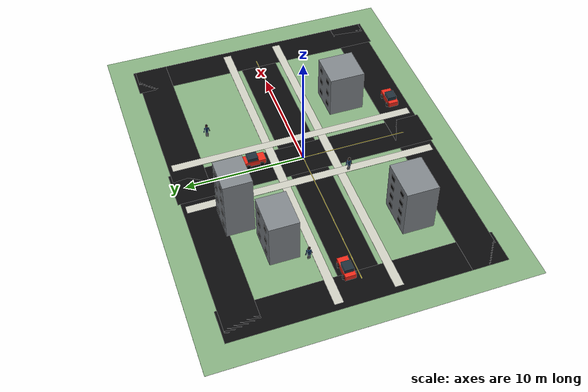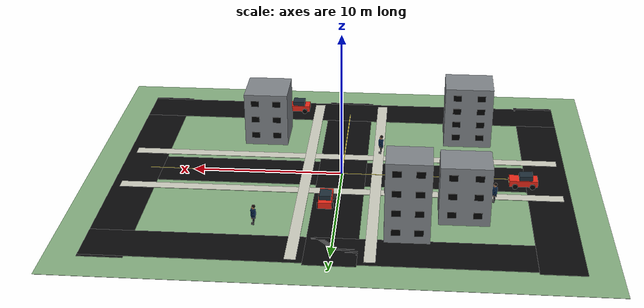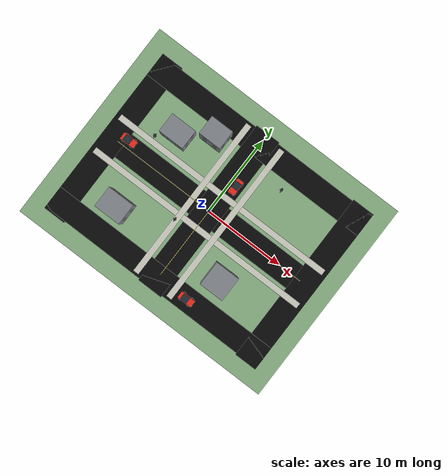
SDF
<sdf version="1.10">
 <world name="city_apm_rgbd">
  <physics name="apm_1ms_physics" type="ignored">
   <max_step_size>0.001</max_step_size>
   <real_time_factor>1.0</real_time_factor>
  </physics>
  <plugin filename="gz-sim-physics-system" name="gz::sim::systems::Physics"/>
  <plugin filename="gz-sim-air-pressure-system" name="gz::sim::systems::AirPressure"/>
  <plugin filename="gz-sim-sensors-system" name="gz::sim::systems::Sensors">
   <render_engine>ogre2</render_engine>
  </plugin>
  <plugin filename="gz-sim-user-commands-system" name="gz::sim::systems::UserCommands"/>
  <plugin filename="gz-sim-scene-broadcaster-system" name="gz::sim::systems::SceneBroadcaster"/>
  <plugin filename="gz-sim-imu-system" name="gz::sim::systems::Imu"/>
  <plugin filename="gz-sim-navsat-system" name="gz::sim::systems::NavSat"/>
  <scene>
   <ambient>0.98 0.98 0.96 1</ambient>
   <background>0.82 0.90 1.0 1</background>
   <shadows>false</shadows>
  </scene>
  <spherical_coordinates>
   <latitude_deg>-35.363262</latitude_deg>
   <longitude_deg>149.165237</longitude_deg>
   <elevation>584</elevation>
   <heading_deg>0</heading_deg>
   <surface_model>EARTH_WGS84</surface_model>
  </spherical_coordinates>
  <light name="sun" type="directional">
   <pose>0 0 24 0.45 0.25 0</pose>
   <diffuse>1.0 1.0 0.95 1</diffuse>
   <specular>0.55 0.55 0.50 1</specular>
   <direction>-0.25 0.18 -0.95</direction>
  </light>
  <model name="visual_ground">
   <static>true</static>
   <link name="link">
    <collision name="ground_collision">
     <pose>0 0 -0.01 0 0 0</pose>
     <geometry><box><size>34 26 0.02</size></box></geometry>
     <surface><friction><ode><mu>0.4</mu><mu2>0.4</mu2></ode></friction></surface>
    </collision>
    <visual name="ground_visual">
     <geometry><box><size>34 26 0.02</size></box></geometry>
     <pose>0 0 -0.01 0 0 0</pose>
     <material><diffuse>0.52 0.68 0.50 1</diffuse></material>
    </visual>
   </link>
  </model>
  <model name="visual_city_block">
   <static>true</static>
   <link name="link">
    <visual name="road_main">
     <pose>0 0 0.005 0 0 0</pose>
     <geometry><box><size>30 3.2 0.03</size></box></geometry>
     <material><diffuse>0.035 0.038 0.042 1</diffuse></material>
    </visual>
    <visual name="road_cross">
     <pose>0 0 0.006 0 0 0</pose>
     <geometry><box><size>3.2 22 0.035</size></box></geometry>
     <material><diffuse>0.035 0.038 0.042 1</diffuse></material>
    </visual>
    <visual name="road_outer_top">
     <pose>0 9.4 0.006 0 0 0</pose>
     <geometry><box><size>30 2.8 0.035</size></box></geometry>
     <material><diffuse>0.035 0.038 0.042 1</diffuse></material>
    </visual>
    <visual name="road_outer_bottom">
     <pose>0 -9.4 0.006 0 0 0</pose>
     <geometry><box><size>30 2.8 0.035</size></box></geometry>
     <material><diffuse>0.035 0.038 0.042 1</diffuse></material>
    </visual>
    <visual name="road_outer_left">
     <pose>-13.6 0 0.006 0 0 0</pose>
     <geometry><box><size>2.8 22 0.035</size></box></geometry>
     <material><diffuse>0.035 0.038 0.042 1</diffuse></material>
    </visual>
    <visual name="road_outer_right">
     <pose>13.6 0 0.006 0 0 0</pose>
     <geometry><box><size>2.8 22 0.035</size></box></geometry>
     <material><diffuse>0.035 0.038 0.042 1</diffuse></material>
    </visual>
    <visual name="lane_main">
     <pose>0 0 0.04 0 0 0</pose>
     <geometry><box><size>26 0.055 0.01</size></box></geometry>
     <material><diffuse>0.92 0.84 0.2 1</diffuse></material>
    </visual>
    <visual name="lane_cross">
     <pose>0 0 0.041 0 0 0</pose>
     <geometry><box><size>0.055 18 0.01</size></box></geometry>
     <material><diffuse>0.92 0.84 0.2 1</diffuse></material>
    </visual>
    <visual name="sidewalk_north">
     <pose>0 2.35 0.02 0 0 0</pose>
     <geometry><box><size>29 0.70 0.025</size></box></geometry>
     <material><diffuse>0.80 0.80 0.75 1</diffuse></material>
    </visual>
    <visual name="sidewalk_south">
     <pose>0 -2.35 0.02 0 0 0</pose>
     <geometry><box><size>29 0.70 0.025</size></box></geometry>
     <material><diffuse>0.80 0.80 0.75 1</diffuse></material>
    </visual>
    <visual name="sidewalk_east">
     <pose>2.35 0 0.021 0 0 0</pose>
     <geometry><box><size>0.70 21 0.025</size></box></geometry>
     <material><diffuse>0.80 0.80 0.75 1</diffuse></material>
    </visual>
    <visual name="sidewalk_west">
     <pose>-2.35 0 0.021 0 0 0</pose>
     <geometry><box><size>0.70 21 0.025</size></box></geometry>
     <material><diffuse>0.80 0.80 0.75 1</diffuse></material>
    </visual>
    <visual name="building_a">
     <pose>-8 4.8 2.0 0 0 0</pose>
     <geometry><box><size>3.2 2.4 4.0</size></box></geometry>
     <material>
      <ambient>0.62 0.64 0.66 1</ambient>
      <diffuse>0.50 0.52 0.54 1</diffuse>
      <specular>0.10 0.10 0.10 1</specular>
     </material>
    </visual>
    <visual name="building_b">
     <pose>-4.5 7.1 2.7 0 0 0</pose>
     <geometry><box><size>2.8 2.3 5.4</size></box></geometry>
     <material>
      <ambient>0.62 0.64 0.66 1</ambient>
      <diffuse>0.50 0.52 0.54 1</diffuse>
      <specular>0.10 0.10 0.10 1</specular>
     </material>
    </visual>
    <visual name="building_d">
     <pose>5.6 -5.4 1.9 0 0 0</pose>
     <geometry><box><size>3.0 3.0 3.8</size></box></geometry>
     <material>
      <ambient>0.62 0.64 0.66 1</ambient>
      <diffuse>0.50 0.52 0.54 1</diffuse>
      <specular>0.10 0.10 0.10 1</specular>
     </material>
    </visual>
    <visual name="building_e">
     <pose>-8.5 -5.8 2.2 0 0 0</pose>
     <geometry><box><size>3.3 2.6 4.4</size></box></geometry>
     <material>
      <ambient>0.62 0.64 0.66 1</ambient>
      <diffuse>0.50 0.52 0.54 1</diffuse>
      <specular>0.10 0.10 0.10 1</specular>
     </material>
    </visual>
    <visual name="window_building_a_front_0_0">
     <pose>-8.8 3.588 0.75 0 0 0</pose>
     <geometry><box><size>0.55 0.035 0.42</size></box></geometry>
     <material>
      <ambient>0.01 0.01 0.01 1</ambient>
      <diffuse>0.01 0.01 0.01 1</diffuse>
      <specular>0.05 0.05 0.05 1</specular>
     </material>
    </visual>
    <visual name="window_building_a_back_0_0">
     <pose>-8.8 6.012 0.75 0 0 0</pose>
     <geometry><box><size>0.55 0.035 0.42</size></box></geometry>
     <material>
      <ambient>0.01 0.01 0.01 1</ambient>
      <diffuse>0.01 0.01 0.01 1</diffuse>
      <specular>0.05 0.05 0.05 1</specular>
     </material>
    </visual>
    <visual name="window_building_a_front_0_1">
     <pose>-7.2 3.588 0.75 0 0 0</pose>
     <geometry><box><size>0.55 0.035 0.42</size></box></geometry>
     <material>
      <ambient>0.01 0.01 0.01 1</ambient>
      <diffuse>0.01 0.01 0.01 1</diffuse>
      <specular>0.05 0.05 0.05 1</specular>
     </material>
    </visual>
    <visual name="window_building_a_back_0_1">
     <pose>-7.2 6.012 0.75 0 0 0</pose>
     <geometry><box><size>0.55 0.035 0.42</size></box></geometry>
     <material>
      <ambient>0.01 0.01 0.01 1</ambient>
      <diffuse>0.01 0.01 0.01 1</diffuse>
      <specular>0.05 0.05 0.05 1</specular>
     </material>
    </visual>
    <visual name="window_building_a_front_1_0">
     <pose>-8.8 3.588 2.05 0 0 0</pose>
     <geometry><box><size>0.55 0.035 0.42</size></box></geometry>
     <material>
      <ambient>0.01 0.01 0.01 1</ambient>
      <diffuse>0.01 0.01 0.01 1</diffuse>
      <specular>0.05 0.05 0.05 1</specular>
     </material>
    </visual>
    <visual name="window_building_a_back_1_0">
     <pose>-8.8 6.012 2.05 0 0 0</pose>
     <geometry><box><size>0.55 0.035 0.42</size></box></geometry>
     <material>
      <ambient>0.01 0.01 0.01 1</ambient>
      <diffuse>0.01 0.01 0.01 1</diffuse>
      <specular>0.05 0.05 0.05 1</specular>
     </material>
    </visual>
    <visual name="window_building_a_front_1_1">
     <pose>-7.2 3.588 2.05 0 0 0</pose>
     <geometry><box><size>0.55 0.035 0.42</size></box></geometry>
     <material>
      <ambient>0.01 0.01 0.01 1</ambient>
      <diffuse>0.01 0.01 0.01 1</diffuse>
      <specular>0.05 0.05 0.05 1</specular>
     </material>
    </visual>
    <visual name="window_building_a_back_1_1">
     <pose>-7.2 6.012 2.05 0 0 0</pose>
     <geometry><box><size>0.55 0.035 0.42</size></box></geometry>
     <material>
      <ambient>0.01 0.01 0.01 1</ambient>
      <diffuse>0.01 0.01 0.01 1</diffuse>
      <specular>0.05 0.05 0.05 1</specular>
     </material>
    </visual>
    <visual name="window_building_a_front_2_0">
     <pose>-8.8 3.588 3.35 0 0 0</pose>
     <geometry><box><size>0.55 0.035 0.42</size></box></geometry>
     <material>
      <ambient>0.01 0.01 0.01 1</ambient>
      <diffuse>0.01 0.01 0.01 1</diffuse>
      <specular>0.05 0.05 0.05 1</specular>
     </material>
    </visual>
    <visual name="window_building_a_back_2_0">
     <pose>-8.8 6.012 3.35 0 0 0</pose>
     <geometry><box><size>0.55 0.035 0.42</size></box></geometry>
     <material>
      <ambient>0.01 0.01 0.01 1</ambient>
      <diffuse>0.01 0.01 0.01 1</diffuse>
      <specular>0.05 0.05 0.05 1</specular>
     </material>
    </visual>
    <visual name="window_building_a_front_2_1">
     <pose>-7.2 3.588 3.35 0 0 0</pose>
     <geometry><box><size>0.55 0.035 0.42</size></box></geometry>
     <material>
      <ambient>0.01 0.01 0.01 1</ambient>
      <diffuse>0.01 0.01 0.01 1</diffuse>
      <specular>0.05 0.05 0.05 1</specular>
     </material>
    </visual>
    <visual name="window_building_a_back_2_1">
     <pose>-7.2 6.012 3.35 0 0 0</pose>
     <geometry><box><size>0.55 0.035 0.42</size></box></geometry>
     <material>
      <ambient>0.01 0.01 0.01 1</ambient>
      <diffuse>0.01 0.01 0.01 1</diffuse>
      <specular>0.05 0.05 0.05 1</specular>
     </material>
    </visual>
    <visual name="window_building_a_side_0_0">
     <pose>-6.388 4.272 0.75 0 0 0</pose>
     <geometry><box><size>0.035 0.48 0.38</size></box></geometry>
     <material>
      <ambient>0.01 0.01 0.01 1</ambient>
      <diffuse>0.01 0.01 0.01 1</diffuse>
      <specular>0.05 0.05 0.05 1</specular>
     </material>
    </visual>
    <visual name="window_building_a_side_0_1">
     <pose>-6.388 5.328 0.75 0 0 0</pose>
     <geometry><box><size>0.035 0.48 0.38</size></box></geometry>
     <material>
      <ambient>0.01 0.01 0.01 1</ambient>
      <diffuse>0.01 0.01 0.01 1</diffuse>
      <specular>0.05 0.05 0.05 1</specular>
     </material>
    </visual>
    <visual name="window_building_a_side_1_0">
     <pose>-6.388 4.272 3.35 0 0 0</pose>
     <geometry><box><size>0.035 0.48 0.38</size></box></geometry>
     <material>
      <ambient>0.01 0.01 0.01 1</ambient>
      <diffuse>0.01 0.01 0.01 1</diffuse>
      <specular>0.05 0.05 0.05 1</specular>
     </material>
    </visual>
    <visual name="window_building_a_side_1_1">
     <pose>-6.388 5.328 3.35 0 0 0</pose>
     <geometry><box><size>0.035 0.48 0.38</size></box></geometry>
     <material>
      <ambient>0.01 0.01 0.01 1</ambient>
      <diffuse>0.01 0.01 0.01 1</diffuse>
      <specular>0.05 0.05 0.05 1</specular>
     </material>
    </visual>
    <visual name="window_building_b_front_0_0">
     <pose>-5.2 5.938 0.75 0 0 0</pose>
     <geometry><box><size>0.55 0.035 0.42</size></box></geometry>
     <material>
      <ambient>0.01 0.01 0.01 1</ambient>
      <diffuse>0.01 0.01 0.01 1</diffuse>
      <specular>0.05 0.05 0.05 1</specular>
     </material>
    </visual>
    <visual name="window_building_b_back_0_0">
     <pose>-5.2 8.262 0.75 0 0 0</pose>
     <geometry><box><size>0.55 0.035 0.42</size></box></geometry>
     <material>
      <ambient>0.01 0.01 0.01 1</ambient>
      <diffuse>0.01 0.01 0.01 1</diffuse>
      <specular>0.05 0.05 0.05 1</specular>
     </material>
    </visual>
    <visual name="window_building_b_front_0_1">
     <pose>-3.8 5.938 0.75 0 0 0</pose>
     <geometry><box><size>0.55 0.035 0.42</size></box></geometry>
     <material>
      <ambient>0.01 0.01 0.01 1</ambient>
      <diffuse>0.01 0.01 0.01 1</diffuse>
      <specular>0.05 0.05 0.05 1</specular>
     </material>
    </visual>
    <visual name="window_building_b_back_0_1">
     <pose>-3.8 8.262 0.75 0 0 0</pose>
     <geometry><box><size>0.55 0.035 0.42</size></box></geometry>
     <material>
      <ambient>0.01 0.01 0.01 1</ambient>
      <diffuse>0.01 0.01 0.01 1</diffuse>
      <specular>0.05 0.05 0.05 1</specular>
     </material>
    </visual>
    <visual name="window_building_b_front_1_0">
     <pose>-5.2 5.938 2.083 0 0 0</pose>
     <geometry><box><size>0.55 0.035 0.42</size></box></geometry>
     <material>
      <ambient>0.01 0.01 0.01 1</ambient>
      <diffuse>0.01 0.01 0.01 1</diffuse>
      <specular>0.05 0.05 0.05 1</specular>
     </material>
    </visual>
    <visual name="window_building_b_back_1_0">
     <pose>-5.2 8.262 2.083 0 0 0</pose>
     <geometry><box><size>0.55 0.035 0.42</size></box></geometry>
     <material>
      <ambient>0.01 0.01 0.01 1</ambient>
      <diffuse>0.01 0.01 0.01 1</diffuse>
      <specular>0.05 0.05 0.05 1</specular>
     </material>
    </visual>
    <visual name="window_building_b_front_1_1">
     <pose>-3.8 5.938 2.083 0 0 0</pose>
     <geometry><box><size>0.55 0.035 0.42</size></box></geometry>
     <material>
      <ambient>0.01 0.01 0.01 1</ambient>
      <diffuse>0.01 0.01 0.01 1</diffuse>
      <specular>0.05 0.05 0.05 1</specular>
     </material>
    </visual>
    <visual name="window_building_b_back_1_1">
     <pose>-3.8 8.262 2.083 0 0 0</pose>
     <geometry><box><size>0.55 0.035 0.42</size></box></geometry>
     <material>
      <ambient>0.01 0.01 0.01 1</ambient>
      <diffuse>0.01 0.01 0.01 1</diffuse>
      <specular>0.05 0.05 0.05 1</specular>
     </material>
    </visual>
    <visual name="window_building_b_front_2_0">
     <pose>-5.2 5.938 3.417 0 0 0</pose>
     <geometry><box><size>0.55 0.035 0.42</size></box></geometry>
     <material>
      <ambient>0.01 0.01 0.01 1</ambient>
      <diffuse>0.01 0.01 0.01 1</diffuse>
      <specular>0.05 0.05 0.05 1</specular>
     </material>
    </visual>
    <visual name="window_building_b_back_2_0">
     <pose>-5.2 8.262 3.417 0 0 0</pose>
     <geometry><box><size>0.55 0.035 0.42</size></box></geometry>
     <material>
      <ambient>0.01 0.01 0.01 1</ambient>
      <diffuse>0.01 0.01 0.01 1</diffuse>
      <specular>0.05 0.05 0.05 1</specular>
     </material>
    </visual>
    <visual name="window_building_b_front_2_1">
     <pose>-3.8 5.938 3.417 0 0 0</pose>
     <geometry><box><size>0.55 0.035 0.42</size></box></geometry>
     <material>
      <ambient>0.01 0.01 0.01 1</ambient>
      <diffuse>0.01 0.01 0.01 1</diffuse>
      <specular>0.05 0.05 0.05 1</specular>
     </material>
    </visual>
    <visual name="window_building_b_back_2_1">
     <pose>-3.8 8.262 3.417 0 0 0</pose>
     <geometry><box><size>0.55 0.035 0.42</size></box></geometry>
     <material>
      <ambient>0.01 0.01 0.01 1</ambient>
      <diffuse>0.01 0.01 0.01 1</diffuse>
      <specular>0.05 0.05 0.05 1</specular>
     </material>
    </visual>
    <visual name="window_building_b_front_3_0">
     <pose>-5.2 5.938 4.75 0 0 0</pose>
     <geometry><box><size>0.55 0.035 0.42</size></box></geometry>
     <material>
      <ambient>0.01 0.01 0.01 1</ambient>
      <diffuse>0.01 0.01 0.01 1</diffuse>
      <specular>0.05 0.05 0.05 1</specular>
     </material>
    </visual>
    <visual name="window_building_b_back_3_0">
     <pose>-5.2 8.262 4.75 0 0 0</pose>
     <geometry><box><size>0.55 0.035 0.42</size></box></geometry>
     <material>
      <ambient>0.01 0.01 0.01 1</ambient>
      <diffuse>0.01 0.01 0.01 1</diffuse>
      <specular>0.05 0.05 0.05 1</specular>
     </material>
    </visual>
    <visual name="window_building_b_front_3_1">
     <pose>-3.8 5.938 4.75 0 0 0</pose>
     <geometry><box><size>0.55 0.035 0.42</size></box></geometry>
     <material>
      <ambient>0.01 0.01 0.01 1</ambient>
      <diffuse>0.01 0.01 0.01 1</diffuse>
      <specular>0.05 0.05 0.05 1</specular>
     </material>
    </visual>
    <visual name="window_building_b_back_3_1">
     <pose>-3.8 8.262 4.75 0 0 0</pose>
     <geometry><box><size>0.55 0.035 0.42</size></box></geometry>
     <material>
      <ambient>0.01 0.01 0.01 1</ambient>
      <diffuse>0.01 0.01 0.01 1</diffuse>
      <specular>0.05 0.05 0.05 1</specular>
     </material>
    </visual>
    <visual name="window_building_b_side_0_0">
     <pose>-3.088 6.594 0.75 0 0 0</pose>
     <geometry><box><size>0.035 0.48 0.38</size></box></geometry>
     <material>
      <ambient>0.01 0.01 0.01 1</ambient>
      <diffuse>0.01 0.01 0.01 1</diffuse>
      <specular>0.05 0.05 0.05 1</specular>
     </material>
    </visual>
    <visual name="window_building_b_side_0_1">
     <pose>-3.088 7.606 0.75 0 0 0</pose>
     <geometry><box><size>0.035 0.48 0.38</size></box></geometry>
     <material>
      <ambient>0.01 0.01 0.01 1</ambient>
      <diffuse>0.01 0.01 0.01 1</diffuse>
      <specular>0.05 0.05 0.05 1</specular>
     </material>
    </visual>
    <visual name="window_building_b_side_1_0">
     <pose>-3.088 6.594 3.417 0 0 0</pose>
     <geometry><box><size>0.035 0.48 0.38</size></box></geometry>
     <material>
      <ambient>0.01 0.01 0.01 1</ambient>
      <diffuse>0.01 0.01 0.01 1</diffuse>
      <specular>0.05 0.05 0.05 1</specular>
     </material>
    </visual>
    <visual name="window_building_b_side_1_1">
     <pose>-3.088 7.606 3.417 0 0 0</pose>
     <geometry><box><size>0.035 0.48 0.38</size></box></geometry>
     <material>
      <ambient>0.01 0.01 0.01 1</ambient>
      <diffuse>0.01 0.01 0.01 1</diffuse>
      <specular>0.05 0.05 0.05 1</specular>
     </material>
    </visual>
    <visual name="window_building_d_front_0_0">
     <pose>4.85 -6.912 0.75 0 0 0</pose>
     <geometry><box><size>0.55 0.035 0.42</size></box></geometry>
     <material>
      <ambient>0.01 0.01 0.01 1</ambient>
      <diffuse>0.01 0.01 0.01 1</diffuse>
      <specular>0.05 0.05 0.05 1</specular>
     </material>
    </visual>
    <visual name="window_building_d_back_0_0">
     <pose>4.85 -3.888 0.75 0 0 0</pose>
     <geometry><box><size>0.55 0.035 0.42</size></box></geometry>
     <material>
      <ambient>0.01 0.01 0.01 1</ambient>
      <diffuse>0.01 0.01 0.01 1</diffuse>
      <specular>0.05 0.05 0.05 1</specular>
     </material>
    </visual>
    <visual name="window_building_d_front_0_1">
     <pose>6.35 -6.912 0.75 0 0 0</pose>
     <geometry><box><size>0.55 0.035 0.42</size></box></geometry>
     <material>
      <ambient>0.01 0.01 0.01 1</ambient>
      <diffuse>0.01 0.01 0.01 1</diffuse>
      <specular>0.05 0.05 0.05 1</specular>
     </material>
    </visual>
    <visual name="window_building_d_back_0_1">
     <pose>6.35 -3.888 0.75 0 0 0</pose>
     <geometry><box><size>0.55 0.035 0.42</size></box></geometry>
     <material>
      <ambient>0.01 0.01 0.01 1</ambient>
      <diffuse>0.01 0.01 0.01 1</diffuse>
      <specular>0.05 0.05 0.05 1</specular>
     </material>
    </visual>
    <visual name="window_building_d_front_1_0">
     <pose>4.85 -6.912 1.95 0 0 0</pose>
     <geometry><box><size>0.55 0.035 0.42</size></box></geometry>
     <material>
      <ambient>0.01 0.01 0.01 1</ambient>
      <diffuse>0.01 0.01 0.01 1</diffuse>
      <specular>0.05 0.05 0.05 1</specular>
     </material>
    </visual>
    <visual name="window_building_d_back_1_0">
     <pose>4.85 -3.888 1.95 0 0 0</pose>
     <geometry><box><size>0.55 0.035 0.42</size></box></geometry>
     <material>
      <ambient>0.01 0.01 0.01 1</ambient>
      <diffuse>0.01 0.01 0.01 1</diffuse>
      <specular>0.05 0.05 0.05 1</specular>
     </material>
    </visual>
    <visual name="window_building_d_front_1_1">
     <pose>6.35 -6.912 1.95 0 0 0</pose>
     <geometry><box><size>0.55 0.035 0.42</size></box></geometry>
     <material>
      <ambient>0.01 0.01 0.01 1</ambient>
      <diffuse>0.01 0.01 0.01 1</diffuse>
      <specular>0.05 0.05 0.05 1</specular>
     </material>
    </visual>
    <visual name="window_building_d_back_1_1">
     <pose>6.35 -3.888 1.95 0 0 0</pose>
     <geometry><box><size>0.55 0.035 0.42</size></box></geometry>
     <material>
      <ambient>0.01 0.01 0.01 1</ambient>
      <diffuse>0.01 0.01 0.01 1</diffuse>
      <specular>0.05 0.05 0.05 1</specular>
     </material>
    </visual>
    <visual name="window_building_d_front_2_0">
     <pose>4.85 -6.912 3.15 0 0 0</pose>
     <geometry><box><size>0.55 0.035 0.42</size></box></geometry>
     <material>
      <ambient>0.01 0.01 0.01 1</ambient>
      <diffuse>0.01 0.01 0.01 1</diffuse>
      <specular>0.05 0.05 0.05 1</specular>
     </material>
    </visual>
    <visual name="window_building_d_back_2_0">
     <pose>4.85 -3.888 3.15 0 0 0</pose>
     <geometry><box><size>0.55 0.035 0.42</size></box></geometry>
     <material>
      <ambient>0.01 0.01 0.01 1</ambient>
      <diffuse>0.01 0.01 0.01 1</diffuse>
      <specular>0.05 0.05 0.05 1</specular>
     </material>
    </visual>
    <visual name="window_building_d_front_2_1">
     <pose>6.35 -6.912 3.15 0 0 0</pose>
     <geometry><box><size>0.55 0.035 0.42</size></box></geometry>
     <material>
      <ambient>0.01 0.01 0.01 1</ambient>
      <diffuse>0.01 0.01 0.01 1</diffuse>
      <specular>0.05 0.05 0.05 1</specular>
     </material>
    </visual>
    <visual name="window_building_d_back_2_1">
     <pose>6.35 -3.888 3.15 0 0 0</pose>
     <geometry><box><size>0.55 0.035 0.42</size></box></geometry>
     <material>
      <ambient>0.01 0.01 0.01 1</ambient>
      <diffuse>0.01 0.01 0.01 1</diffuse>
      <specular>0.05 0.05 0.05 1</specular>
     </material>
    </visual>
    <visual name="window_building_d_side_0_0">
     <pose>7.112 -6.06 0.75 0 0 0</pose>
     <geometry><box><size>0.035 0.48 0.38</size></box></geometry>
     <material>
      <ambient>0.01 0.01 0.01 1</ambient>
      <diffuse>0.01 0.01 0.01 1</diffuse>
      <specular>0.05 0.05 0.05 1</specular>
     </material>
    </visual>
    <visual name="window_building_d_side_0_1">
     <pose>7.112 -4.74 0.75 0 0 0</pose>
     <geometry><box><size>0.035 0.48 0.38</size></box></geometry>
     <material>
      <ambient>0.01 0.01 0.01 1</ambient>
      <diffuse>0.01 0.01 0.01 1</diffuse>
      <specular>0.05 0.05 0.05 1</specular>
     </material>
    </visual>
    <visual name="window_building_d_side_1_0">
     <pose>7.112 -6.06 3.15 0 0 0</pose>
     <geometry><box><size>0.035 0.48 0.38</size></box></geometry>
     <material>
      <ambient>0.01 0.01 0.01 1</ambient>
      <diffuse>0.01 0.01 0.01 1</diffuse>
      <specular>0.05 0.05 0.05 1</specular>
     </material>
    </visual>
    <visual name="window_building_d_side_1_1">
     <pose>7.112 -4.74 3.15 0 0 0</pose>
     <geometry><box><size>0.035 0.48 0.38</size></box></geometry>
     <material>
      <ambient>0.01 0.01 0.01 1</ambient>
      <diffuse>0.01 0.01 0.01 1</diffuse>
      <specular>0.05 0.05 0.05 1</specular>
     </material>
    </visual>
    <visual name="window_building_e_front_0_0">
     <pose>-9.325 -7.112 0.75 0 0 0</pose>
     <geometry><box><size>0.55 0.035 0.42</size></box></geometry>
     <material>
      <ambient>0.01 0.01 0.01 1</ambient>
      <diffuse>0.01 0.01 0.01 1</diffuse>
      <specular>0.05 0.05 0.05 1</specular>
     </material>
    </visual>
    <visual name="window_building_e_back_0_0">
     <pose>-9.325 -4.488 0.75 0 0 0</pose>
     <geometry><box><size>0.55 0.035 0.42</size></box></geometry>
     <material>
      <ambient>0.01 0.01 0.01 1</ambient>
      <diffuse>0.01 0.01 0.01 1</diffuse>
      <specular>0.05 0.05 0.05 1</specular>
     </material>
    </visual>
    <visual name="window_building_e_front_0_1">
     <pose>-7.675 -7.112 0.75 0 0 0</pose>
     <geometry><box><size>0.55 0.035 0.42</size></box></geometry>
     <material>
      <ambient>0.01 0.01 0.01 1</ambient>
      <diffuse>0.01 0.01 0.01 1</diffuse>
      <specular>0.05 0.05 0.05 1</specular>
     </material>
    </visual>
    <visual name="window_building_e_back_0_1">
     <pose>-7.675 -4.488 0.75 0 0 0</pose>
     <geometry><box><size>0.55 0.035 0.42</size></box></geometry>
     <material>
      <ambient>0.01 0.01 0.01 1</ambient>
      <diffuse>0.01 0.01 0.01 1</diffuse>
      <specular>0.05 0.05 0.05 1</specular>
     </material>
    </visual>
    <visual name="window_building_e_front_1_0">
     <pose>-9.325 -7.112 1.75 0 0 0</pose>
     <geometry><box><size>0.55 0.035 0.42</size></box></geometry>
     <material>
      <ambient>0.01 0.01 0.01 1</ambient>
      <diffuse>0.01 0.01 0.01 1</diffuse>
      <specular>0.05 0.05 0.05 1</specular>
     </material>
    </visual>
    <visual name="window_building_e_back_1_0">
     <pose>-9.325 -4.488 1.75 0 0 0</pose>
     <geometry><box><size>0.55 0.035 0.42</size></box></geometry>
     <material>
      <ambient>0.01 0.01 0.01 1</ambient>
      <diffuse>0.01 0.01 0.01 1</diffuse>
      <specular>0.05 0.05 0.05 1</specular>
     </material>
    </visual>
    <visual name="window_building_e_front_1_1">
     <pose>-7.675 -7.112 1.75 0 0 0</pose>
     <geometry><box><size>0.55 0.035 0.42</size></box></geometry>
     <material>
      <ambient>0.01 0.01 0.01 1</ambient>
      <diffuse>0.01 0.01 0.01 1</diffuse>
      <specular>0.05 0.05 0.05 1</specular>
     </material>
    </visual>
    <visual name="window_building_e_back_1_1">
     <pose>-7.675 -4.488 1.75 0 0 0</pose>
     <geometry><box><size>0.55 0.035 0.42</size></box></geometry>
     <material>
      <ambient>0.01 0.01 0.01 1</ambient>
      <diffuse>0.01 0.01 0.01 1</diffuse>
      <specular>0.05 0.05 0.05 1</specular>
     </material>
    </visual>
    <visual name="window_building_e_front_2_0">
     <pose>-9.325 -7.112 2.75 0 0 0</pose>
     <geometry><box><size>0.55 0.035 0.42</size></box></geometry>
     <material>
      <ambient>0.01 0.01 0.01 1</ambient>
      <diffuse>0.01 0.01 0.01 1</diffuse>
      <specular>0.05 0.05 0.05 1</specular>
     </material>
    </visual>
    <visual name="window_building_e_back_2_0">
     <pose>-9.325 -4.488 2.75 0 0 0</pose>
     <geometry><box><size>0.55 0.035 0.42</size></box></geometry>
     <material>
      <ambient>0.01 0.01 0.01 1</ambient>
      <diffuse>0.01 0.01 0.01 1</diffuse>
      <specular>0.05 0.05 0.05 1</specular>
     </material>
    </visual>
    <visual name="window_building_e_front_2_1">
     <pose>-7.675 -7.112 2.75 0 0 0</pose>
     <geometry><box><size>0.55 0.035 0.42</size></box></geometry>
     <material>
      <ambient>0.01 0.01 0.01 1</ambient>
      <diffuse>0.01 0.01 0.01 1</diffuse>
      <specular>0.05 0.05 0.05 1</specular>
     </material>
    </visual>
    <visual name="window_building_e_back_2_1">
     <pose>-7.675 -4.488 2.75 0 0 0</pose>
     <geometry><box><size>0.55 0.035 0.42</size></box></geometry>
     <material>
      <ambient>0.01 0.01 0.01 1</ambient>
      <diffuse>0.01 0.01 0.01 1</diffuse>
      <specular>0.05 0.05 0.05 1</specular>
     </material>
    </visual>
    <visual name="window_building_e_front_3_0">
     <pose>-9.325 -7.112 3.75 0 0 0</pose>
     <geometry><box><size>0.55 0.035 0.42</size></box></geometry>
     <material>
      <ambient>0.01 0.01 0.01 1</ambient>
      <diffuse>0.01 0.01 0.01 1</diffuse>
      <specular>0.05 0.05 0.05 1</specular>
     </material>
    </visual>
    <visual name="window_building_e_back_3_0">
     <pose>-9.325 -4.488 3.75 0 0 0</pose>
     <geometry><box><size>0.55 0.035 0.42</size></box></geometry>
     <material>
      <ambient>0.01 0.01 0.01 1</ambient>
      <diffuse>0.01 0.01 0.01 1</diffuse>
      <specular>0.05 0.05 0.05 1</specular>
     </material>
    </visual>
    <visual name="window_building_e_front_3_1">
     <pose>-7.675 -7.112 3.75 0 0 0</pose>
     <geometry><box><size>0.55 0.035 0.42</size></box></geometry>
     <material>
      <ambient>0.01 0.01 0.01 1</ambient>
      <diffuse>0.01 0.01 0.01 1</diffuse>
      <specular>0.05 0.05 0.05 1</specular>
     </material>
    </visual>
    <visual name="window_building_e_back_3_1">
     <pose>-7.675 -4.488 3.75 0 0 0</pose>
     <geometry><box><size>0.55 0.035 0.42</size></box></geometry>
     <material>
      <ambient>0.01 0.01 0.01 1</ambient>
      <diffuse>0.01 0.01 0.01 1</diffuse>
      <specular>0.05 0.05 0.05 1</specular>
     </material>
    </visual>
    <visual name="window_building_e_side_0_0">
     <pose>-6.838 -6.372 0.75 0 0 0</pose>
     <geometry><box><size>0.035 0.48 0.38</size></box></geometry>
     <material>
      <ambient>0.01 0.01 0.01 1</ambient>
      <diffuse>0.01 0.01 0.01 1</diffuse>
      <specular>0.05 0.05 0.05 1</specular>
     </material>
    </visual>
    <visual name="window_building_e_side_0_1">
     <pose>-6.838 -5.228 0.75 0 0 0</pose>
     <geometry><box><size>0.035 0.48 0.38</size></box></geometry>
     <material>
      <ambient>0.01 0.01 0.01 1</ambient>
      <diffuse>0.01 0.01 0.01 1</diffuse>
      <specular>0.05 0.05 0.05 1</specular>
     </material>
    </visual>
    <visual name="window_building_e_side_1_0">
     <pose>-6.838 -6.372 2.75 0 0 0</pose>
     <geometry><box><size>0.035 0.48 0.38</size></box></geometry>
     <material>
      <ambient>0.01 0.01 0.01 1</ambient>
      <diffuse>0.01 0.01 0.01 1</diffuse>
      <specular>0.05 0.05 0.05 1</specular>
     </material>
    </visual>
    <visual name="window_building_e_side_1_1">
     <pose>-6.838 -5.228 2.75 0 0 0</pose>
     <geometry><box><size>0.035 0.48 0.38</size></box></geometry>
     <material>
      <ambient>0.01 0.01 0.01 1</ambient>
      <diffuse>0.01 0.01 0.01 1</diffuse>
      <specular>0.05 0.05 0.05 1</specular>
     </material>
    </visual>
   </link>
  </model>
  <include><uri>model://textured_person</uri><name>person_north</name><pose>-10 3.05 0.05 0 0 0</pose></include>
  <include>
   <uri>model://textured_person</uri>
   <name>person_south</name>
   <pose>-2.5 -3.05 0.05 0 0 0</pose>
  </include>
  <include><uri>model://textured_person</uri><name>person_block</name><pose>5 6.8 0.05 0 0 0</pose></include>
  <include>
   <uri>model://textured_vehicle</uri>
   <name>vehicle_main</name>
   <pose>-12 0.85 0.05 0 0 0</pose>
  </include>
  <include>
   <uri>model://textured_vehicle</uri>
   <name>vehicle_cross</name>
   <pose>0.75 4.0 0.05 0 0 -1.5708</pose>
  </include>
  <include><uri>model://textured_vehicle</uri><name>vehicle_loop</name><pose>4 -9.4 0.05 0 0 0</pose></include>
  <include>
   <uri>model://d435i_downward_sensor_only</uri>
   <name>apm_iris_d435i</name>
   <pose>0.24 0 0.35 0 0 0</pose>
  </include>
  <include>
   <uri>model://lidar_downward_sensor_only</uri>
   <name>apm_iris_lidar</name>
   <pose>0.0 0 0.45 0 0 0</pose>
  </include>
  <include>
   <uri>model://mid360_3d_lidar_sensor_only</uri>
   <name>apm_iris_mid360</name>
   <pose>0.0 0 0.55 0 0 0</pose>
  </include>
 </world>
</sdf>

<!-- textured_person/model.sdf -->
<sdf version="1.10">
  <model name="textured_person">
    <static>false</static>
    <self_collide>false</self_collide>
    <link name="visual_link">
      <gravity>false</gravity>
      <kinematic>true</kinematic>
      <!-- A lightweight collision envelope makes the moving model visible to
           Gazebo ray sensors without adding articulated-body simulation. -->
      <collision name="lidar_collision">
        <pose>0 0 0.65 0 0 0</pose>
        <geometry><box><size>0.34 0.30 1.30</size></box></geometry>
      </collision>
      <visual name="head"><pose>0 0 1.204 0 0 0</pose><geometry><sphere><radius>0.112</radius></sphere></geometry><material><diffuse>0.72 0.52 0.38 1</diffuse></material></visual>
      <visual name="hair"><pose>-0.025 0 1.288 0 0 0</pose><geometry><sphere><radius>0.108</radius></sphere></geometry><material><diffuse>0.08 0.055 0.04 1</diffuse></material></visual>
      <visual name="neck"><pose>0 0 1.043 0 0 0</pose><geometry><cylinder><radius>0.046</radius><length>0.13</length></cylinder></geometry><material><diffuse>0.68 0.48 0.34 1</diffuse></material></visual>
      <visual name="chest"><pose>0 0 0.84 0 0 0</pose><geometry><box><size>0.31 0.18 0.40</size></box></geometry><material><diffuse>0.05 0.18 0.34 1</diffuse><pbr><metal><albedo_map>materials/textures/person_albedo.png</albedo_map><roughness>0.8</roughness></metal></pbr></material></visual>
      <visual name="abdomen_fill"><pose>0 0 0.63 0 0 0</pose><geometry><box><size>0.27 0.17 0.25</size></box></geometry><material><diffuse>0.045 0.14 0.26 1</diffuse></material></visual>
      <visual name="pelvis"><pose>0 0 0.49 0 0 0</pose><geometry><box><size>0.25 0.16 0.13</size></box></geometry><material><diffuse>0.05 0.055 0.075 1</diffuse></material></visual>
      <visual name="left_shoulder"><pose>0 0.16 0.91 0 0 0</pose><geometry><sphere><radius>0.055</radius></sphere></geometry><material><diffuse>0.04 0.16 0.30 1</diffuse></material></visual>
      <visual name="right_shoulder"><pose>0 -0.16 0.91 0 0 0</pose><geometry><sphere><radius>0.055</radius></sphere></geometry><material><diffuse>0.04 0.16 0.30 1</diffuse></material></visual>
      <visual name="left_arm"><pose>0.02 0.20 0.76 0.22 0.20 0</pose><geometry><cylinder><radius>0.034</radius><length>0.42</length></cylinder></geometry><material><diffuse>0.04 0.16 0.30 1</diffuse></material></visual>
      <visual name="right_arm"><pose>0.02 -0.20 0.76 -0.22 -0.20 0</pose><geometry><cylinder><radius>0.034</radius><length>0.42</length></cylinder></geometry><material><diffuse>0.04 0.16 0.30 1</diffuse></material></visual>
      <visual name="left_hand"><pose>0.045 0.25 0.55 0 0 0</pose><geometry><sphere><radius>0.040</radius></sphere></geometry><material><diffuse>0.70 0.50 0.36 1</diffuse></material></visual>
      <visual name="right_hand"><pose>0.045 -0.25 0.55 0 0 0</pose><geometry><sphere><radius>0.040</radius></sphere></geometry><material><diffuse>0.70 0.50 0.36 1</diffuse></material></visual>
      <visual name="left_upper_leg"><pose>0 0.065 0.31 0.04 0 0</pose><geometry><cylinder><radius>0.048</radius><length>0.34</length></cylinder></geometry><material><diffuse>0.035 0.04 0.055 1</diffuse></material></visual>
      <visual name="right_upper_leg"><pose>0 -0.065 0.31 -0.04 0 0</pose><geometry><cylinder><radius>0.048</radius><length>0.34</length></cylinder></geometry><material><diffuse>0.035 0.04 0.055 1</diffuse></material></visual>
      <visual name="left_lower_leg"><pose>0.02 0.065 0.13 -0.04 0 0</pose><geometry><cylinder><radius>0.043</radius><length>0.30</length></cylinder></geometry><material><diffuse>0.035 0.04 0.055 1</diffuse></material></visual>
      <visual name="right_lower_leg"><pose>0.02 -0.065 0.13 0.04 0 0</pose><geometry><cylinder><radius>0.043</radius><length>0.30</length></cylinder></geometry><material><diffuse>0.035 0.04 0.055 1</diffuse></material></visual>
      <visual name="left_shoe"><pose>0.065 0.065 0.035 0 0 0</pose><geometry><box><size>0.17 0.08 0.055</size></box></geometry><material><diffuse>0.015 0.015 0.014 1</diffuse></material></visual>
      <visual name="right_shoe"><pose>0.065 -0.065 0.035 0 0 0</pose><geometry><box><size>0.17 0.08 0.055</size></box></geometry><material><diffuse>0.015 0.015 0.014 1</diffuse></material></visual>
    </link>
  </model>
</sdf>

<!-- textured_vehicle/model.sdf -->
<sdf version="1.10">
  <model name="textured_vehicle">
    <static>false</static>
    <self_collide>false</self_collide>
    <link name="visual_link">
      <gravity>false</gravity>
      <kinematic>true</kinematic>
      <collision name="lidar_collision">
        <pose>-0.02 0 0.45 0 0 0</pose>
        <geometry><box><size>1.90 0.92 0.90</size></box></geometry>
      </collision>
      <visual name="body">
        <pose>0 0 0.36 0 0 0</pose>
        <geometry><box><size>1.85 0.86 0.42</size></box></geometry>
        <material>
          <diffuse>0.92 0.16 0.10 1</diffuse>
          <pbr><metal><albedo_map>materials/textures/vehicle_body.png</albedo_map><roughness>0.55</roughness></metal></pbr>
        </material>
      </visual>
      <visual name="cabin">
        <pose>-0.15 0 0.70 0 0 0</pose>
        <geometry><box><size>0.86 0.74 0.36</size></box></geometry>
        <material>
          <diffuse>0.12 0.18 0.22 1</diffuse>
          <pbr><metal><albedo_map>materials/textures/vehicle_window.png</albedo_map><roughness>0.25</roughness></metal></pbr>
        </material>
      </visual>
      <visual name="front_light_left"><pose>0.94 0.24 0.39 0 0 0</pose><geometry><box><size>0.04 0.16 0.10</size></box></geometry><material><diffuse>1.0 0.92 0.62 1</diffuse></material></visual>
      <visual name="front_light_right"><pose>0.94 -0.24 0.39 0 0 0</pose><geometry><box><size>0.04 0.16 0.10</size></box></geometry><material><diffuse>1.0 0.92 0.62 1</diffuse></material></visual>
      <visual name="wheel_fl"><pose>0.55 0.47 0.20 1.570796 0 0</pose><geometry><cylinder><radius>0.18</radius><length>0.12</length></cylinder></geometry><material><diffuse>0.02 0.02 0.02 1</diffuse></material></visual>
      <visual name="wheel_fr"><pose>0.55 -0.47 0.20 1.570796 0 0</pose><geometry><cylinder><radius>0.18</radius><length>0.12</length></cylinder></geometry><material><diffuse>0.02 0.02 0.02 1</diffuse></material></visual>
      <visual name="wheel_rl"><pose>-0.58 0.47 0.20 1.570796 0 0</pose><geometry><cylinder><radius>0.18</radius><length>0.12</length></cylinder></geometry><material><diffuse>0.02 0.02 0.02 1</diffuse></material></visual>
      <visual name="wheel_rr"><pose>-0.58 -0.47 0.20 1.570796 0 0</pose><geometry><cylinder><radius>0.18</radius><length>0.12</length></cylinder></geometry><material><diffuse>0.02 0.02 0.02 1</diffuse></material></visual>
    </link>
  </model>
</sdf>

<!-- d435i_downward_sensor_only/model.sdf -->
<sdf version="1.10">
  <model name="d435i_downward_sensor_only">
    <static>false</static>
    <self_collide>false</self_collide>
    <link name="sensor_link">
      <gravity>false</gravity>
      <kinematic>true</kinematic>
      <sensor name="optical_flow_mono_down" type="camera">
        <pose>0 0 0 0 1.57079632679 0</pose>
        <always_on>1</always_on>
        <update_rate>30</update_rate>
        <visualize>false</visualize>
        <topic>/camera/camera</topic>
        <camera>
          <horizontal_fov>1.21126</horizontal_fov>
          <image>
            <width>640</width>
            <height>480</height>
            <format>R8G8B8</format>
          </image>
          <clip>
            <near>0.105</near>
            <far>20.0</far>
          </clip>
        </camera>
      </sensor>
    </link>
  </model>
</sdf>

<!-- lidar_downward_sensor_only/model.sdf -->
<sdf version="1.10">
  <model name="lidar_downward_sensor_only">
    <static>false</static>
    <self_collide>false</self_collide>
    <link name="sensor_link">
      <gravity>false</gravity>
      <kinematic>true</kinematic>
      <visual name="lidar_body">
        <pose>0 0 0 0 0 0</pose>
        <geometry>
          <cylinder>
            <radius>0.055</radius>
            <length>0.045</length>
          </cylinder>
        </geometry>
        <material>
          <ambient>0.02 0.02 0.025 1</ambient>
          <diffuse>0.02 0.02 0.025 1</diffuse>
          <specular>0.15 0.15 0.15 1</specular>
        </material>
      </visual>
      <sensor name="downward_lidar" type="gpu_lidar">
        <!-- 传感器坐标系向下安装：扫描平面平行地面，用于观察无人机下方障碍物距离。 -->
        <pose>0 0 0 0 1.57079632679 0</pose>
        <always_on>1</always_on>
        <update_rate>20</update_rate>
        <visualize>true</visualize>
        <topic>/lidar/scan</topic>
        <lidar>
          <scan>
            <horizontal>
              <samples>360</samples>
              <resolution>1</resolution>
              <min_angle>-3.14159265</min_angle>
              <max_angle>3.14159265</max_angle>
            </horizontal>
            <vertical>
              <samples>1</samples>
              <resolution>1</resolution>
              <min_angle>0</min_angle>
              <max_angle>0</max_angle>
            </vertical>
          </scan>
          <range>
            <min>0.12</min>
            <max>20.0</max>
            <resolution>0.01</resolution>
          </range>
          <noise>
            <type>gaussian</type>
            <mean>0.0</mean>
            <stddev>0.01</stddev>
          </noise>
        </lidar>
      </sensor>
    </link>
  </model>
</sdf>

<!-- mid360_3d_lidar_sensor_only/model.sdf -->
<sdf version="1.10">
  <model name="mid360_3d_lidar_sensor_only">
    <static>false</static>
    <self_collide>false</self_collide>
    <link name="sensor_link">
      <gravity>false</gravity>
      <kinematic>true</kinematic>
      <visual name="mid360_body">
        <pose>0 0 0 0 0 0</pose>
        <geometry>
          <cylinder>
            <radius>0.045</radius>
            <length>0.065</length>
          </cylinder>
        </geometry>
        <material>
          <ambient>0.015 0.018 0.020 1</ambient>
          <diffuse>0.018 0.022 0.026 1</diffuse>
          <specular>0.25 0.25 0.25 1</specular>
        </material>
      </visual>
      <sensor name="mid360_sim_lidar" type="gpu_lidar">
        <pose>0 0 0 0 0 0</pose>
        <always_on>1</always_on>
        <update_rate>10</update_rate>
        <visualize>false</visualize>
        <topic>/mid360/lidar</topic>
        <lidar>
          <scan>
            <horizontal>
              <samples>500</samples>
              <resolution>1</resolution>
              <min_angle>-3.14159265</min_angle>
              <max_angle>3.14159265</max_angle>
            </horizontal>
            <vertical>
              <samples>40</samples>
              <resolution>1</resolution>
              <min_angle>-0.12217304764</min_angle>
              <max_angle>0.90757121104</max_angle>
            </vertical>
          </scan>
          <range>
            <min>0.10</min>
            <max>40.0</max>
            <resolution>0.02</resolution>
          </range>
          <noise>
            <type>gaussian</type>
            <mean>0.0</mean>
            <stddev>0.02</stddev>
          </noise>
        </lidar>
      </sensor>
    </link>
  </model>
</sdf>
